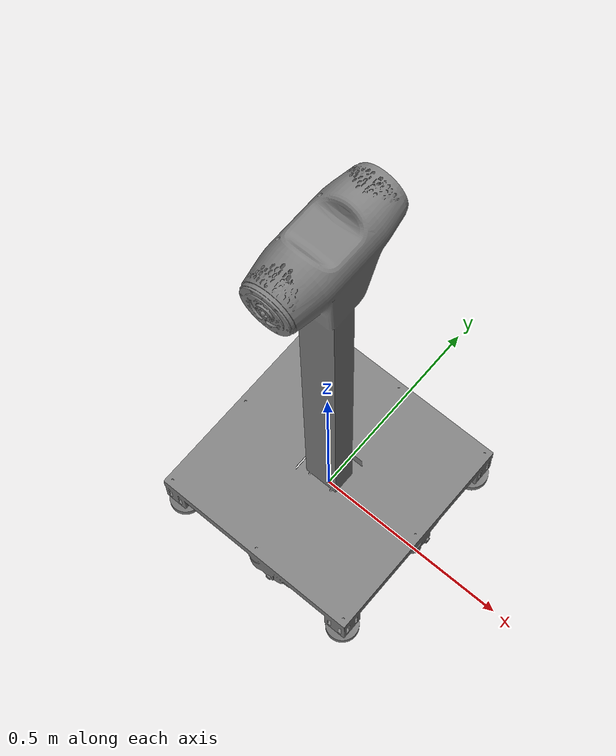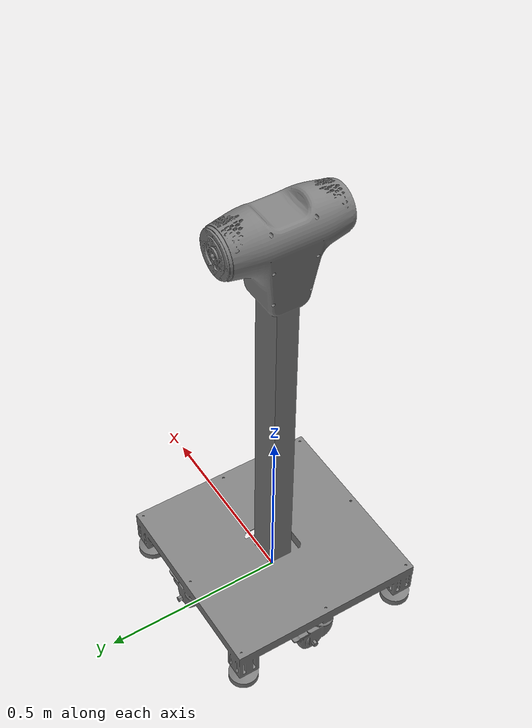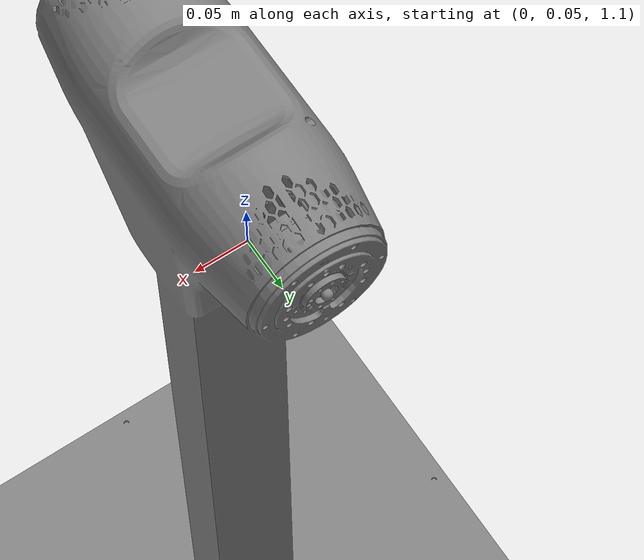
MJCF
<mujoco model="lkls73_torso_default">
  <compiler meshdir="meshes" discardvisual="false" autolimits="true" angle="radian" eulerseq="XYZ"/>
  <option/>

  <default>
    <default class="base_lkls73_torso_visual">
      <geom type="mesh" contype="0" conaffinity="0" group="1"/>
    </default>
    <default class="base_lkls73_torso_collision">
      <geom type="mesh" contype="1" conaffinity="1" group="3"/>
    </default>
  </default>

  <asset>
    <mesh name="torso_base_link" file="base_link.STL"/>
  </asset>

  <worldbody>
    <body name="torso_root" pos="0 0 0">
      <body name="base_link" pos="0 0 1.2">
        <inertial pos="5.75109188383945E-05 1.44120839455095E-05 -0.489174317245241"
                  mass="10.8067081992573"
                  fullinertia="0.192527915393298 0.191539752328327 0.103049415034787 -1.67956043663548E-08 -3.68569447484118E-08 6.60319145138974E-08"/>
        <geom class="base_lkls73_torso_visual" mesh="torso_base_link"/>
        <geom class="base_lkls73_torso_collision" mesh="torso_base_link"/>

        <body name="arm_left_mount" pos="0 0.164 0">
          <site name="arm_left_mount" pos="0 0 0"/>
        </body>

        <body name="arm_right_mount" pos="3.32E-05 -0.164 0">
          <site name="arm_right_mount" pos="0 0 0"/>
        </body>
      </body>
    </body>
  </worldbody>
</mujoco>
